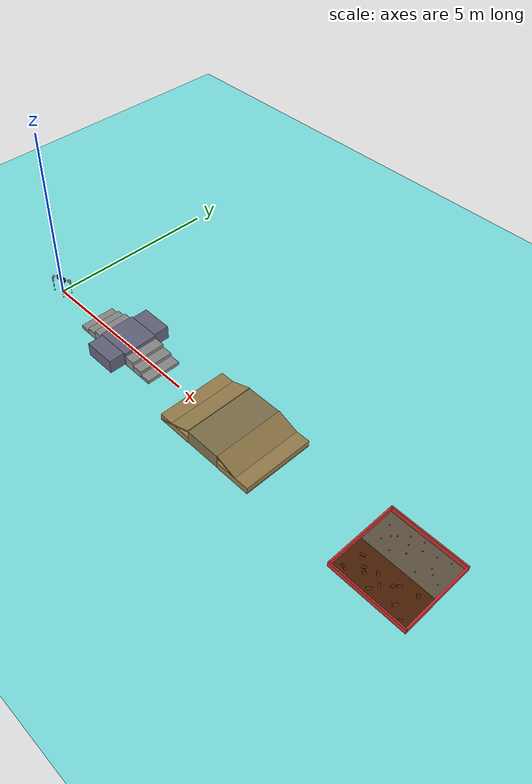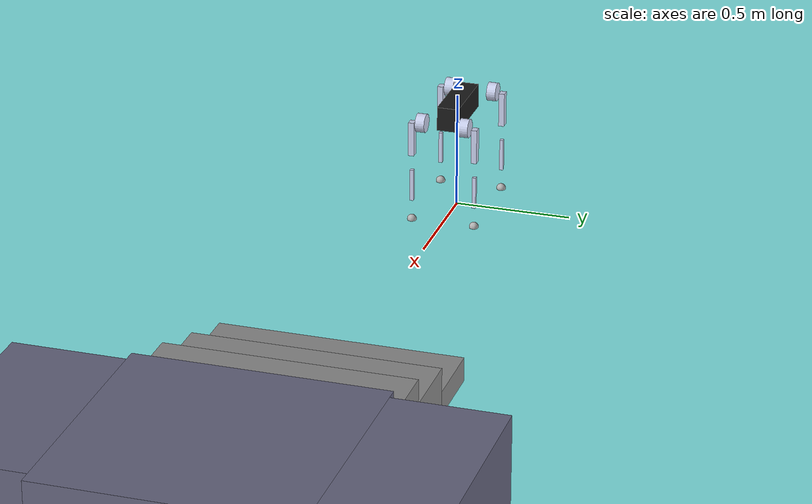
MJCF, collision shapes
<mujoco model="dog">
  <compiler angle="radian" meshdir="../meshes/"/>
  <size njmax="500" nconmax="100"/>
  <option gravity="0 0 -9.806" iterations="50" solver="Newton" timestep="0.005"/>

  <default>
    <geom contype="1" conaffinity="1" friction="0.6 0.3 0.3" margin="0.001" group="0"/>
    <light castshadow="false" diffuse="1 1 1"/>
    <joint damping="0.01" armature="0.01" frictionloss="0.2" />
    <camera fovy="60"/>
  </default>

  <asset>
    <!-- 纹理 -->
    <texture type="skybox" builtin="gradient" rgb1="1.0 1.0 1.0" rgb2="0.6 0.8 1.0" width="512" height="512"/>
    <texture name="plane" type="2d" builtin="flat" rgb1="1 1 1" rgb2="1 1 1" width="512" height="512" mark="cross" markrgb="0 0 0"/>
    <material name="plane" reflectance="0.0" texture="plane" texrepeat="3 3" texuniform="true"/>

    <!-- T字台阶材质 -->
    <material name="step_mat" rgba="0.55 0.55 0.55 1"/>
    <material name="platform_mat" rgba="0.4 0.4 0.5 1"/>

    <!-- 斜坡材质 -->
    <material name="ramp_mat" rgba="0.6 0.5 0.3 1"/>
    <material name="ramp_platform_mat" rgba="0.5 0.45 0.3 1"/>

    <!-- 砂砾/碎木坑材质 -->
    <texture name="gravel_tex" type="2d" builtin="checker" rgb1="0.6 0.58 0.5" rgb2="0.55 0.52 0.45" width="64" height="64"/>
    <material name="gravel_mat" texture="gravel_tex" texrepeat="20 20" rgba="0.65 0.6 0.55 1"/>
    <texture name="woodchip_tex" type="2d" builtin="checker" rgb1="0.55 0.35 0.15" rgb2="0.45 0.28 0.1" width="32" height="32"/>
    <material name="woodchip_mat" texture="woodchip_tex" texrepeat="12 12" rgba="0.6 0.4 0.2 1"/>
    <material name="guardrail_mat" rgba="0.8 0.2 0.2 0.6"/>
    <material name="pit_floor_mat" rgba="0.3 0.3 0.3 1"/>

    <!-- 机体 mesh -->
    <mesh name="base"     file="base.STL"/>
    <mesh name="ODIN1"    file="ODIN1.STL"/>
    <mesh name="FL_hip"   file="FL_hip.STL"/>
    <mesh name="FL_thigh" file="FL_thigh.STL"/>
    <mesh name="FL_calf"  file="FL_calf.STL"/>
    <mesh name="FL_foot"  file="FL_foot.STL"/>
    <mesh name="FR_hip"   file="FR_hip.STL"/>
    <mesh name="FR_thigh" file="FR_thigh.STL"/>
    <mesh name="FR_calf"  file="FR_calf.STL"/>
    <mesh name="FR_foot"  file="FR_foot.STL"/>
    <mesh name="RR_hip"   file="RR_hip.STL"/>
    <mesh name="RR_thigh" file="RR_thigh.STL"/>
    <mesh name="RR_calf"  file="RR_calf.STL"/>
    <mesh name="RR_foot"  file="RR_foot.STL"/>
    <mesh name="RL_hip"   file="RL_hip.STL"/>
    <mesh name="RL_thigh" file="RL_thigh.STL"/>
    <mesh name="RL_calf"  file="RL_calf.STL"/>
    <mesh name="RL_foot"  file="RR_foot.STL"/>
  </asset>

  <visual>
    <rgba com="0.502 1.0 0 0.5" contactforce="0.98 0.4 0.4 0.7" contactpoint="1.0 1.0 0.6 0.4"/>
    <scale com="0.2" forcewidth="0.035" contactwidth="0.10" contactheight="0.04"/>
  </visual>

  <worldbody>
    <light directional="true" diffuse=".8 .8 .8" pos="0 0 10" dir="0 0 -10"/>
    <camera name="track" mode="trackcom" pos="0 -1.3 1.6" xyaxes="1 0 0 0 0.707 0.707"/>

    <geom name="floor" type="plane" conaffinity="1" condim="3" contype="1" rgba="0.5 0.9 0.9 0.1" material="plane" pos="0 0 0" size="0 0 1"/>

    <!--                    地形 1: T 字形台阶地形                          -->
    <!--                    中心位于 X=3.0, Y=0                            -->

    <body name="t_step_terrain" pos="3.0 0 0">
      <!-- === 中心顶部平台: 1.0m x 1.0m, 高 0.4m === -->
      <geom name="t_platform" type="box" size="0.5 0.5 0.2"
            pos="0 0 0.2" material="platform_mat"/>

      <!-- === 前侧台阶 (X正方向, 从平台向外下降) === -->
      <!-- 第1级: 紧邻平台, h=0.3m, 宽0.3m -->
      <geom name="t_step_f1" type="box" size="0.15 0.5 0.15"
            pos="0.65 0 0.15" material="step_mat"/>
      <geom name="t_step_f2" type="box" size="0.15 0.5 0.1"
            pos="0.95 0 0.1" material="step_mat"/>
      <geom name="t_step_f3" type="box" size="0.15 0.5 0.05"
            pos="1.25 0 0.05" material="step_mat"/>

      <!-- === 后侧台阶 (X负方向, 从平台向外下降) === -->
      <geom name="t_step_b1" type="box" size="0.15 0.5 0.15"
            pos="-0.65 0 0.15" material="step_mat"/>
      <geom name="t_step_b2" type="box" size="0.15 0.5 0.1"
            pos="-0.95 0 0.1" material="step_mat"/>
      <geom name="t_step_b3" type="box" size="0.15 0.5 0.05"
            pos="-1.25 0 0.05" material="step_mat"/>

      <!-- === T字横杆: 左翼 (Y正方向延伸) === -->
      <!-- 翼: 0.9m(X) x 0.45m(Y), 与平台同高 0.4m -->
      <geom name="t_wing_left" type="box" size="0.45 0.225 0.2"
            pos="0 0.725 0.2" material="platform_mat"/>

      <!-- === T字横杆: 右翼 (Y负方向延伸) === -->
      <geom name="t_wing_right" type="box" size="0.45 0.225 0.2"
            pos="0 -0.725 0.2" material="platform_mat"/>
    </body>

    <!--              地形 2: 全宽斜坡-平台-斜坡地形                        -->
    <!--              中心位于 X=7.0, Y=0                                  -->

    <body name="ramp_terrain" pos="7.0 0 0">
      <!-- === 上斜坡: 从地面升到 0.4m === -->
      <!-- 斜坡长 = sqrt(1.0² + 0.4²) ≈ 1.0770m, 半长 ≈ 0.5385 -->
      <!-- 中心点: X=-1.0, Z=0.2, 绕Y轴旋转 0.3805 rad -->
      <geom name="ramp_up" type="box" size="0.5385 1.0 0.02"
            pos="-1.0 0 0.2"
            euler="0 -0.3805 0"
            material="ramp_mat"
            friction="0.8 0.3 0.3"/>

      <!-- === 顶部平台: 1.0m 长, 0.4m 高 === -->
      <geom name="ramp_platform" type="box" size="0.5 1.0 0.2"
            pos="0 0 0.2"
            material="ramp_platform_mat"/>

      <!-- === 下斜坡: 从 0.4m 降回地面 === -->
      <geom name="ramp_down" type="box" size="0.5385 1.0 0.02"
            pos="1.0 0 0.2"
            euler="0 0.3805 0"
            material="ramp_mat"
            friction="0.8 0.3 0.3"/>

      <!-- 斜坡底部过渡填充, 防止缝隙 -->
      <geom name="ramp_fill_up" type="box" size="0.5 1.0 0.1"
            pos="-1.0 0 0.08"
            material="ramp_mat"/>
      <geom name="ramp_fill_down" type="box" size="0.5 1.0 0.1"
            pos="1.0 0 0.08"
            material="ramp_mat"/>
    </body>

    <!--           地形 3: 砂砾/碎木坑地形 (带护栏)                         -->
    <!--           中心位于 X=12.0, Y=0                                    -->

    <body name="gravel_pit_terrain" pos="12.0 0 0">
      <!-- === 坑底基板 (略低于地面) === -->
      <geom name="pit_floor" type="box" size="1.0 1.0 0.01"
            pos="0 0 -0.02" material="pit_floor_mat"/>

      <!-- === 左半侧: 砂砾 (Y > 0), 高摩擦 === -->
      <!-- 用多个小凸起模拟砂砾质感 -->
      <geom name="gravel_base" type="box" size="1.0 0.5 0.005"
            pos="0 0.5 -0.005" material="gravel_mat"
            friction="1.2 0.5 0.5"/>
      <!-- 砂砾噪点凸起 - 随机分布的小半球 -->
      <geom name="gravel_b01" type="sphere" size="0.02" pos="-0.7  0.3 0.0" material="gravel_mat" friction="1.2 0.5 0.5"/>
      <geom name="gravel_b02" type="sphere" size="0.015" pos="-0.5  0.6 0.0" material="gravel_mat" friction="1.2 0.5 0.5"/>
      <geom name="gravel_b03" type="sphere" size="0.018" pos="-0.3  0.8 0.0" material="gravel_mat" friction="1.2 0.5 0.5"/>
      <geom name="gravel_b04" type="sphere" size="0.02" pos="-0.1  0.4 0.0" material="gravel_mat" friction="1.2 0.5 0.5"/>
      <geom name="gravel_b05" type="sphere" size="0.015" pos=" 0.1  0.7 0.0" material="gravel_mat" friction="1.2 0.5 0.5"/>
      <geom name="gravel_b06" type="sphere" size="0.02" pos=" 0.3  0.2 0.0" material="gravel_mat" friction="1.2 0.5 0.5"/>
      <geom name="gravel_b07" type="sphere" size="0.018" pos=" 0.5  0.5 0.0" material="gravel_mat" friction="1.2 0.5 0.5"/>
      <geom name="gravel_b08" type="sphere" size="0.015" pos=" 0.7  0.9 0.0" material="gravel_mat" friction="1.2 0.5 0.5"/>
      <geom name="gravel_b09" type="sphere" size="0.02" pos=" 0.8  0.3 0.0" material="gravel_mat" friction="1.2 0.5 0.5"/>
      <geom name="gravel_b10" type="sphere" size="0.018" pos="-0.8  0.7 0.0" material="gravel_mat" friction="1.2 0.5 0.5"/>
      <geom name="gravel_b11" type="sphere" size="0.015" pos="-0.4  0.2 0.0" material="gravel_mat" friction="1.2 0.5 0.5"/>
      <geom name="gravel_b12" type="sphere" size="0.02" pos=" 0.0  0.9 0.0" material="gravel_mat" friction="1.2 0.5 0.5"/>
      <geom name="gravel_b13" type="sphere" size="0.018" pos=" 0.4  0.8 0.0" material="gravel_mat" friction="1.2 0.5 0.5"/>
      <geom name="gravel_b14" type="sphere" size="0.015" pos=" 0.6  0.4 0.0" material="gravel_mat" friction="1.2 0.5 0.5"/>
      <geom name="gravel_b15" type="sphere" size="0.02" pos="-0.6  0.5 0.0" material="gravel_mat" friction="1.2 0.5 0.5"/>
      <geom name="gravel_b16" type="sphere" size="0.018" pos="-0.2  0.6 0.0" material="gravel_mat" friction="1.2 0.5 0.5"/>

      <!-- === 右半侧: 碎木 (Y < 0), 低摩擦 (打滑感) === -->
      <geom name="woodchip_base" type="box" size="1.0 0.5 0.005"
            pos="0 -0.5 -0.005" material="woodchip_mat"
            friction="0.3 0.1 0.1"/>
      <!-- 碎木粗糙起伏 - 较大的不规则凸起 -->
      <geom name="wood_b01" type="box" size="0.06 0.03 0.015" pos="-0.7 -0.3  0.005" euler="0 0  0.3" material="woodchip_mat" friction="0.3 0.1 0.1"/>
      <geom name="wood_b02" type="box" size="0.05 0.04 0.012" pos="-0.4 -0.6  0.002" euler="0 0 -0.5" material="woodchip_mat" friction="0.3 0.1 0.1"/>
      <geom name="wood_b03" type="box" size="0.07 0.025 0.018" pos="-0.1 -0.8  0.008" euler="0 0  0.8" material="woodchip_mat" friction="0.3 0.1 0.1"/>
      <geom name="wood_b04" type="box" size="0.04 0.05 0.01"  pos=" 0.2 -0.4  0.0"   euler="0 0 -0.2" material="woodchip_mat" friction="0.3 0.1 0.1"/>
      <geom name="wood_b05" type="box" size="0.065 0.03 0.02" pos=" 0.5 -0.7  0.01"  euler="0 0  1.1" material="woodchip_mat" friction="0.3 0.1 0.1"/>
      <geom name="wood_b06" type="box" size="0.05 0.035 0.015" pos=" 0.7 -0.2  0.005" euler="0 0 -0.7" material="woodchip_mat" friction="0.3 0.1 0.1"/>
      <geom name="wood_b07" type="box" size="0.055 0.04 0.012" pos="-0.5 -0.5  0.002" euler="0 0  0.4" material="woodchip_mat" friction="0.3 0.1 0.1"/>
      <geom name="wood_b08" type="box" size="0.06 0.03 0.018"  pos=" 0.0 -0.6  0.008" euler="0 0 -1.0" material="woodchip_mat" friction="0.3 0.1 0.1"/>
      <geom name="wood_b09" type="box" size="0.045 0.05 0.014" pos=" 0.8 -0.9  0.004" euler="0 0  0.6" material="woodchip_mat" friction="0.3 0.1 0.1"/>
      <geom name="wood_b10" type="box" size="0.07 0.025 0.016" pos="-0.8 -0.8  0.006" euler="0 0 -0.3" material="woodchip_mat" friction="0.3 0.1 0.1"/>
      <geom name="wood_b11" type="box" size="0.05 0.04 0.013"  pos=" 0.3 -0.3  0.003" euler="0 0  0.9" material="woodchip_mat" friction="0.3 0.1 0.1"/>
      <geom name="wood_b12" type="box" size="0.06 0.03 0.017"  pos="-0.2 -0.4  0.007" euler="0 0 -0.6" material="woodchip_mat" friction="0.3 0.1 0.1"/>

      <!-- === 四周护栏, 高 0.15m === -->
      <!-- 前护栏 (+X) -->
      <geom name="rail_front" type="box" size="0.02 1.0 0.075"
            pos="1.02 0 0.075" material="guardrail_mat"/>
      <!-- 后护栏 (-X) -->
      <geom name="rail_back" type="box" size="0.02 1.0 0.075"
            pos="-1.02 0 0.075" material="guardrail_mat"/>
      <!-- 左护栏 (+Y) -->
      <geom name="rail_left" type="box" size="1.04 0.02 0.075"
            pos="0 1.02 0.075" material="guardrail_mat"/>
      <!-- 右护栏 (-Y) -->
      <geom name="rail_right" type="box" size="1.04 0.02 0.075"
            pos="0 -1.02 0.075" material="guardrail_mat"/>
    </body>

    <!-- ============ 基座 ============ -->
    <body name="trunk" pos="0 0 0.45">
      <inertial pos="0.0063754 0 0" quat="1 0 0 0" mass="13.555" diaginertia="0.13989 0.11159 0.051785"/>
      <joint type="free"/>
      <!-- 视觉: mesh -->
      <geom type="mesh" mesh="base" contype="0" conaffinity="0" group="1" rgba="0.10196 0.10196 0.10196 1"/>
      <!-- 碰撞: box -->
      <geom size="0.1531 0.04675 0.052" type="box" rgba="0.10196 0.10196 0.10196 0"/>
      <!-- ODIN1 -->
      <site name="imu" pos="0 0 0"/>

      <!-- ==================== FL Leg ==================== -->
      <body name="FL_hip" pos="0.2145 0.05 0">
        <inertial pos="-0.010697 -0.0033174 0" quat="0.483303 0.483303 0.516157 0.516157" mass="0.33292" diaginertia="0.000342408 0.00025417 0.000178192"/>
        <joint name="FL_hip_joint" pos="0 0 0" axis="1 0 0" limited="true" range="-1.05 1.05"/>
        <geom type="mesh" mesh="FL_hip" contype="0" conaffinity="0" group="1" rgba="0.79216 0.81961 0.93333 1"/>
        <geom size="0.04 0.02" pos="0 0.045 0" quat="0.707105 0.707108 0 0" type="cylinder" rgba="0.79216 0.81961 0.93333 0"/>

        <body name="FL_thigh" pos="0 0.088 0">
          <inertial pos="-0.0069171 -0.014196 -0.040905" quat="0.937237 -0.0612753 -0.0854854 -0.332451" mass="1.5467" diaginertia="0.00673267 0.0061914 0.00123923"/>
          <joint name="FL_thigh_joint" pos="0 0 0" axis="0 1 0" limited="true" range="-1.57 3.49"/>
          <geom type="mesh" mesh="FL_thigh" contype="0" conaffinity="0" group="1" rgba="0.79216 0.81961 0.93333 1"/>
          <geom size="0.075 0.01225 0.017" pos="0 0 -0.075" quat="0.707105 0 0.707108 0" type="box" rgba="0.79216 0.81961 0.93333 0"/>

          <body name="FL_calf" pos="0 0 -0.22">
            <inertial pos="0.00982028 0 -0.140434" quat="0.706763 0.022034 0.0220339 0.706764" mass="0.16045" diaginertia="0.00125052 0.00124052 2.28295e-05"/>
            <joint name="FL_calf_joint" pos="0 0 0" axis="0 1 0" limited="true" range="-2.72 -0.84"/>
            <geom type="mesh" mesh="FL_calf" contype="0" conaffinity="0" group="1" rgba="0.79216 0.81961 0.93333 1"/>
            <geom size="0.07 0.008 0.008" pos="0 0 -0.07" quat="0.707105 0 0.707108 0" type="box" rgba="0.79216 0.81961 0.93333 0"/>
            <geom type="mesh" mesh="FL_foot" pos="0 0 -0.22849" contype="0" conaffinity="0" group="1" rgba="0.69804 0.69804 0.69804 1"/>
            <geom name="FL_foot_col" size="0.02" pos="0 0 -0.22849" rgba="0.69804 0.69804 0.69804 0"/>
          </body>
        </body>
      </body>

      <!-- ==================== FR Leg ==================== -->
      <body name="FR_hip" pos="0.2145 -0.05 0">
        <inertial pos="-0.010697 0.0033174 0" quat="0.516157 0.516157 0.483303 0.483303" mass="0.33292" diaginertia="0.000342408 0.00025417 0.000178192"/>
        <joint name="FR_hip_joint" pos="0 0 0" axis="1 0 0" limited="true" range="-1.05 1.05"/>
        <geom type="mesh" mesh="FR_hip" contype="0" conaffinity="0" group="1" rgba="0.79216 0.81961 0.93333 1"/>
        <geom size="0.04 0.02" pos="0 -0.045 0" quat="0.707105 0.707108 0 0" type="cylinder" rgba="0.79216 0.81961 0.93333 0"/>

        <body name="FR_thigh" pos="0 -0.088 0">
          <inertial pos="-0.0069171 0.014196 -0.040905" quat="0.937237 0.0612753 -0.0854854 0.332451" mass="1.5467" diaginertia="0.00673267 0.0061914 0.00123923"/>
          <joint name="FR_thigh_joint" pos="0 0 0" axis="0 1 0" limited="true" range="-1.57 3.49"/>
          <geom type="mesh" mesh="FR_thigh" contype="0" conaffinity="0" group="1" rgba="0.79216 0.81961 0.93333 1"/>
          <geom size="0.075 0.01225 0.017" pos="0 0 -0.075" quat="0.707105 0 0.707108 0" type="box" rgba="0.79216 0.81961 0.93333 0"/>

          <body name="FR_calf" pos="0 0 -0.22">
            <inertial pos="0.00982028 0 -0.140434" quat="0.706763 0.022034 0.0220339 0.706764" mass="0.16045" diaginertia="0.00125052 0.00124052 2.28295e-05"/>
            <joint name="FR_calf_joint" pos="0 0 0" axis="0 1 0" limited="true" range="-2.72 -0.84"/>
            <geom type="mesh" mesh="FR_calf" contype="0" conaffinity="0" group="1" rgba="0.79216 0.81961 0.93333 1"/>
            <geom size="0.07 0.008 0.008" pos="0 0 -0.07" quat="0.707105 0 0.707108 0" type="box" rgba="0.79216 0.81961 0.93333 0"/>
            <geom type="mesh" mesh="FR_foot" pos="0 0 -0.22849" contype="0" conaffinity="0" group="1" rgba="0.69804 0.69804 0.69804 1"/>
            <geom name="FR_foot_col" size="0.02" pos="0 0 -0.22849" rgba="0.69804 0.69804 0.69804 0"/>
          </body>
        </body>
      </body>

      <!-- ==================== RR Leg ==================== -->
      <body name="RR_hip" pos="-0.2145 -0.05 0">
        <inertial pos="0.010697 0.0033174 0" quat="0.483303 0.483303 0.516157 0.516157" mass="0.33292" diaginertia="0.000342408 0.00025417 0.000178192"/>
        <joint name="RR_hip_joint" pos="0 0 0" axis="1 0 0" limited="true" range="-1.05 1.05"/>
        <geom type="mesh" mesh="RR_hip" contype="0" conaffinity="0" group="1" rgba="0.79216 0.81961 0.93333 1"/>
        <geom size="0.04 0.02" pos="0 -0.045 0" quat="0.707105 0.707108 0 0" type="cylinder" rgba="0.79216 0.81961 0.93333 0"/>

        <body name="RR_thigh" pos="0 -0.088 0">
          <inertial pos="-0.0069171 0.014196 -0.040905" quat="0.937237 0.0612753 -0.0854854 0.332451" mass="1.5467" diaginertia="0.00673267 0.0061914 0.00123923"/>
          <joint name="RR_thigh_joint" pos="0 0 0" axis="0 1 0" limited="true" range="-1.57 3.49"/>
          <geom type="mesh" mesh="RR_thigh" contype="0" conaffinity="0" group="1" rgba="0.79216 0.81961 0.93333 1"/>
          <geom size="0.075 0.01225 0.017" pos="0 0 -0.075" quat="0.707105 0 0.707108 0" type="box" rgba="0.79216 0.81961 0.93333 0"/>

          <body name="RR_calf" pos="0 0 -0.22">
            <inertial pos="0.00982028 0 -0.140433" quat="0.706763 0.022034 0.022034 0.706764" mass="0.16045" diaginertia="0.00125049 0.0012405 2.28296e-05"/>
            <joint name="RR_calf_joint" pos="0 0 0" axis="0 1 0" limited="true" range="-2.72 -0.84"/>
            <geom type="mesh" mesh="RR_calf" contype="0" conaffinity="0" group="1" rgba="0.79216 0.81961 0.93333 1"/>
            <geom size="0.07 0.008 0.008" pos="0 0 -0.07" quat="0.707105 0 0.707108 0" type="box" rgba="0.79216 0.81961 0.93333 0"/>
            <geom type="mesh" mesh="RR_foot" pos="0 0 -0.228486" contype="0" conaffinity="0" group="1" rgba="0.69804 0.69804 0.69804 1"/>
            <geom name="RR_foot_col" size="0.02" pos="0 0 -0.228486" rgba="0.69804 0.69804 0.69804 0"/>
          </body>
        </body>
      </body>

      <!-- ==================== RL Leg ==================== -->
      <body name="RL_hip" pos="-0.2145 0.05 0">
        <inertial pos="0.010697 -0.0033174 0" quat="0.516157 0.516157 0.483303 0.483303" mass="0.33292" diaginertia="0.000342408 0.00025417 0.000178192"/>
        <joint name="RL_hip_joint" pos="0 0 0" axis="1 0 0" limited="true" range="-1.05 1.05"/>
        <geom type="mesh" mesh="RL_hip" contype="0" conaffinity="0" group="1" rgba="0.79216 0.81961 0.93333 1"/>
        <geom size="0.04 0.02" pos="0 0.045 0" quat="0.707105 0.707108 0 0" type="cylinder" rgba="0.79216 0.81961 0.93333 0"/>

        <body name="RL_thigh" pos="0 0.088 0">
          <inertial pos="-0.0069171 -0.014196 -0.040905" quat="0.937237 -0.0612753 -0.0854854 -0.332451" mass="1.5467" diaginertia="0.00673267 0.0061914 0.00123923"/>
          <joint name="RL_thigh_joint" pos="0 0 0" axis="0 1 0" limited="true" range="-1.57 3.49"/>
          <geom type="mesh" mesh="RL_thigh" contype="0" conaffinity="0" group="1" rgba="0.79216 0.81961 0.93333 1"/>
          <geom size="0.075 0.01225 0.017" pos="0 0 -0.075" quat="0.707105 0 0.707108 0" type="box" rgba="0.79216 0.81961 0.93333 0"/>

          <body name="RL_calf" pos="0 0 -0.22">
            <inertial pos="0.00981915 0 -0.140434" quat="0.706763 0.0220386 0.0220386 0.706764" mass="0.16045" diaginertia="0.00125052 0.00124052 2.2831e-05"/>
            <joint name="RL_calf_joint" pos="0 0 0" axis="0 1 0" limited="true" range="-2.72 -0.84"/>
            <geom type="mesh" mesh="RL_calf" contype="0" conaffinity="0" group="1" rgba="0.79216 0.81961 0.93333 1"/>
            <geom size="0.07 0.008 0.008" pos="0 0 -0.07" quat="0.707105 0 0.707108 0" type="box" rgba="0.79216 0.81961 0.93333 0"/>
            <geom type="mesh" mesh="RL_foot" pos="0 0 -0.22849" contype="0" conaffinity="0" group="1" rgba="0.69804 0.69804 0.69804 1"/>
            <geom name="RL_foot_col" size="0.02" pos="0 0 -0.22849" rgba="0.69804 0.69804 0.69804 0"/>
          </body>
        </body>
      </body>

    </body><!-- end trunk -->
  </worldbody>

  <!-- ============ Actuators (FL, FR, RR, RL = 与URDF/Isaac一致) ============ -->
  <actuator>
    <motor name="FL_hip"   gear="1" joint="FL_hip_joint"   ctrlrange="-23.7 23.7"   ctrllimited="true"/>
    <motor name="FL_thigh" gear="1" joint="FL_thigh_joint" ctrlrange="-23.7 23.7"   ctrllimited="true"/>
    <motor name="FL_calf"  gear="1" joint="FL_calf_joint"  ctrlrange="-35.55 35.55" ctrllimited="true"/>
    <motor name="FR_hip"   gear="1" joint="FR_hip_joint"   ctrlrange="-23.7 23.7"   ctrllimited="true"/>
    <motor name="FR_thigh" gear="1" joint="FR_thigh_joint" ctrlrange="-23.7 23.7"   ctrllimited="true"/>
    <motor name="FR_calf"  gear="1" joint="FR_calf_joint"  ctrlrange="-35.55 35.55" ctrllimited="true"/>
    <motor name="RR_hip"   gear="1" joint="RR_hip_joint"   ctrlrange="-23.7 23.7"   ctrllimited="true"/>
    <motor name="RR_thigh" gear="1" joint="RR_thigh_joint" ctrlrange="-23.7 23.7"   ctrllimited="true"/>
    <motor name="RR_calf"  gear="1" joint="RR_calf_joint"  ctrlrange="-35.55 35.55" ctrllimited="true"/>
    <motor name="RL_hip"   gear="1" joint="RL_hip_joint"   ctrlrange="-23.7 23.7"   ctrllimited="true"/>
    <motor name="RL_thigh" gear="1" joint="RL_thigh_joint" ctrlrange="-23.7 23.7"   ctrllimited="true"/>
    <motor name="RL_calf"  gear="1" joint="RL_calf_joint"  ctrlrange="-35.55 35.55" ctrllimited="true"/>
  </actuator>

  <!-- ============ Sensors ============ -->
  <sensor>
    <jointpos name="FL_hip_pos"   joint="FL_hip_joint"/>
    <jointpos name="FL_thigh_pos" joint="FL_thigh_joint"/>
    <jointpos name="FL_calf_pos"  joint="FL_calf_joint"/>
    <jointpos name="FR_hip_pos"   joint="FR_hip_joint"/>
    <jointpos name="FR_thigh_pos" joint="FR_thigh_joint"/>
    <jointpos name="FR_calf_pos"  joint="FR_calf_joint"/>
    <jointpos name="RR_hip_pos"   joint="RR_hip_joint"/>
    <jointpos name="RR_thigh_pos" joint="RR_thigh_joint"/>
    <jointpos name="RR_calf_pos"  joint="RR_calf_joint"/>
    <jointpos name="RL_hip_pos"   joint="RL_hip_joint"/>
    <jointpos name="RL_thigh_pos" joint="RL_thigh_joint"/>
    <jointpos name="RL_calf_pos"  joint="RL_calf_joint"/>

    <jointvel name="FL_hip_vel"   joint="FL_hip_joint"/>
    <jointvel name="FL_thigh_vel" joint="FL_thigh_joint"/>
    <jointvel name="FL_calf_vel"  joint="FL_calf_joint"/>
    <jointvel name="FR_hip_vel"   joint="FR_hip_joint"/>
    <jointvel name="FR_thigh_vel" joint="FR_thigh_joint"/>
    <jointvel name="FR_calf_vel"  joint="FR_calf_joint"/>
    <jointvel name="RR_hip_vel"   joint="RR_hip_joint"/>
    <jointvel name="RR_thigh_vel" joint="RR_thigh_joint"/>
    <jointvel name="RR_calf_vel"  joint="RR_calf_joint"/>
    <jointvel name="RL_hip_vel"   joint="RL_hip_joint"/>
    <jointvel name="RL_thigh_vel" joint="RL_thigh_joint"/>
    <jointvel name="RL_calf_vel"  joint="RL_calf_joint"/>

    <accelerometer name="Body_Acc"  site="imu"/>
    <gyro          name="Body_Gyro" site="imu"/>
    <framepos      name="Body_Pos"  objtype="site" objname="imu"/>
    <framequat     name="Body_Quat" objtype="site" objname="imu"/>
  </sensor>
</mujoco>
